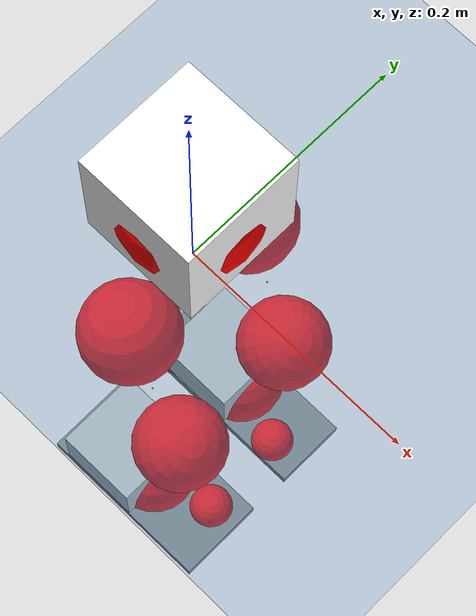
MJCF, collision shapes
<mujoco model="pi_12dof_release_v1">
  <compiler angle="radian" assetdir="assets" balanceinertia="true" inertiafromgeom="false"/>

  <option timestep="0.005" density="1.2" viscosity="2e-05"/>

  <size nkey="1"/>

  <visual>
    <quality shadowsize="8192"/>
    <map shadowclip="0.5"/>
  </visual>

  <default>
    <default class="/">
      <joint armature="0.01" damping="0.01" frictionloss="0.01"/>
      <geom contype="0" conaffinity="0" group="1" solref="-1000 -80"/>
      <site size="0.01 0.005 0.005" group="5"/>
      <general forcelimited="true" biastype="affine" gainprm="20" biasprm="0 -20 -0.5"/>
      <default class="foot">
        <geom size="0.0845 0.036 0.005" type="box" condim="6" group="4" priority="1" friction="0.9 0.2 0.2" solimp="0.015 1 0.005"/>
      </default>
      <default class="reward_collision_sphere">
        <geom group="5" rgba="1 0 0 1"/>
      </default>
    </default>
  </default>

  <asset>
    <texture type="skybox" colorspace="auto" name="//unnamed_texture_0" builtin="gradient" rgb1="0.95 0.95 0.95" rgb2="0.95 0.95 0.95" width="100" height="600"/>
    <texture type="2d" colorspace="auto" name="texplane" builtin="checker" rgb1="0.345 0.575 0.748" rgb2="0.345 0.575 0.748" markrgb="1 1 1" width="512" height="512"/>
    <material name="MatPlane" class="/" texture="texplane" texuniform="true" texrepeat="2 2" specular="0.9"/>
    <mesh name="baselink_1" class="/" file="baselink_1.STL"/>
    <mesh name="r_hip_pitch_link" class="/" file="r_hip_pitch_link.STL"/>
    <mesh name="r_hip_roll_link" class="/" file="r_hip_roll_link.STL"/>
    <mesh name="r_thigh_link" class="/" file="r_thigh_link.STL"/>
    <mesh name="r_calf_link" class="/" file="r_calf_link.STL"/>
    <mesh name="r_ankle_pitch_link" class="/" file="r_ankle_pitch_link.STL"/>
    <mesh name="r_ankle_roll_link" class="/" file="r_ankle_roll_link.STL"/>
    <mesh name="l_hip_pitch_link" class="/" file="l_hip_pitch_link.STL"/>
    <mesh name="l_hip_roll_link" class="/" file="l_hip_roll_link.STL"/>
    <mesh name="l_thigh_link" class="/" file="l_thigh_link.STL"/>
    <mesh name="l_calf_link" class="/" file="l_calf_link.STL"/>
    <mesh name="l_ankle_pitch_link" class="/" file="l_ankle_pitch_link.STL"/>
    <mesh name="l_ankle_roll_link" class="/" file="l_ankle_roll_link.STL"/>
  </asset>

  <worldbody>
    <geom name="floor" class="/" size="100 100 0.125" type="plane" group="0" material="MatPlane"/>
    <light name="toplight_shadow" class="/" pos="0 0 5" dir="0.0990148 0.0990148 -0.990148" type="directional" ambient="0.04 0.04 0.04" diffuse="0.55 0.55 0.55" specular="0.12 0.12 0.12"/>
    <light name="toplight_fill" class="/" pos="0 0 5" dir="0.0990148 0.0990148 -0.990148" type="directional" castshadow="false" ambient="0.04 0.04 0.04" diffuse="0.3 0.3 0.3" specular="0.08 0.08 0.08"/>
    <body name="trunk" pos="-0.00172008 0.000789806 -0.00267339" quat="0.999999 0.000505226 -0.000353288 0.000908832">
      <inertial pos="-0.0005529 0.0020074 0.0527534" quat="0.695689 0.00515163 0.00942273 0.718263" mass="2.1755" diaginertia="0.00494145 0.00292615 0.0167757"/>
      <joint name="//unnamed_joint_0" type="free"/>
      <geom name="//unnamed_geom_1" class="/" type="mesh" density="0" rgba="1 1 1 1" mesh="baselink_1"/>
      <geom name="//unnamed_geom_2" class="/" size="0.0498601 0.0498601 0.0498601" pos="0 0 0.105744" type="box" rgba="1 1 1 1"/>
      <geom name="//unnamed_geom_3" class="reward_collision_sphere" size="0.0548461" pos="0 0 0.092526"/>
      <site name="imu" class="/" pos="0.0126594 0.00956345 -0.0134274" size="0.00997201"/>
      <camera name="track" class="/" pos="0 -1.59708 0" quat="0.707107 0.707107 0 0" mode="trackcom"/>
      <camera name="ego_camera" class="/" pos="0.0653446 0 0.237924" quat="-0.5 -0.5 0.5 0.5"/>
      <body name="r_hip_pitch_link" pos="-0.000948897 -0.0183552 -0.0437187" quat="0.992136 0.000620557 -0.125164 -0.000154187">
        <inertial pos="-0.00184532 -0.0448598 -0.0013289" quat="-0.0215327 0.700548 -0.0279863 0.712731" mass="0.364949" diaginertia="5.39569e-05 3.16453e-05 0.000343953"/>
        <joint name="r_hip_pitch_joint" class="/" pos="0 0 0" axis="0.00850396 -0.999961 0.00218764" stiffness="0.00364082" range="-1.77218 1.24478" armature="0.0086841" damping="0.023423" frictionloss="0.0111358"/>
        <geom name="//unnamed_geom_4" class="/" type="mesh" density="0" rgba="0.75294 0.75294 0.75294 1" mesh="r_hip_pitch_link"/>
        <geom name="//unnamed_geom_5" class="/" size="0.000498601 0.000498601 0.000498601" type="box" rgba="0.75294 0.75294 0.75294 1"/>
        <body name="r_hip_roll_link" pos="-0.000741036 -0.0448932 -0.00070182" quat="1 0.000600705 0.000232035 7.63306e-05">
          <inertial pos="-0.00126761 0.000494261 -0.0785699" quat="0.710662 -0.0844382 -0.0897114 0.692663" mass="0.375586" diaginertia="0.00016873 8.65984e-05 0.00052288"/>
          <joint name="r_hip_roll_joint" class="/" pos="0 0 0" axis="-0.999968 -0.0068335 0.00405049" range="-0.11437 0.492877" armature="0.011391" damping="0" frictionloss="0.00868955"/>
          <geom name="//unnamed_geom_6" class="/" type="mesh" density="0" rgba="0.75294 0.75294 0.75294 1" mesh="r_hip_roll_link"/>
          <geom name="//unnamed_geom_7" class="/" size="0.000498601 0.000498601 0.000498601" type="box" rgba="0.75294 0.75294 0.75294 1"/>
          <geom name="//unnamed_geom_8" class="reward_collision_sphere" size="0.039888"/>
          <body name="r_thigh_link" pos="-0.00245037 -0.000911951 -0.0895261" quat="1 0.000116477 1.07606e-05 7.24832e-05">
            <inertial pos="-0.00168071 -0.00170138 -0.0608392" quat="0.736738 0.676176 0.00192328 -0.000577469" mass="0.110016" diaginertia="6.34655e-05 2.96588e-05 0.000232329"/>
            <joint name="r_thigh_joint" class="/" pos="0 0 0" axis="0.0103616 0.00637922 -0.999926" range="-0.254845 0.642944" armature="0.0107136" damping="0" frictionloss="0.0109573"/>
            <geom name="//unnamed_geom_9" class="/" type="mesh" density="0" rgba="0.75294 0.75294 0.75294 1" mesh="r_thigh_link"/>
            <geom name="//unnamed_geom_10" class="/" size="0.000498601 0.000498601 0.000498601" type="box" rgba="0.75294 0.75294 0.75294 1"/>
            <body name="r_calf_link" pos="0.00298258 0.00113685 -0.0936236" quat="0.947627 -2.586e-06 0.319378 -6.24431e-05">
              <inertial pos="-0.00310095 -0.00276601 -0.0925059" quat="0.999984 -0.00128975 -0.000810382 0.00546412" mass="0.795367" diaginertia="0.00169266 0.00116391 0.000709313"/>
              <joint name="r_calf_joint" class="/" pos="0 0 0" axis="-0.0108369 -0.999939 0.00210431" stiffness="0.00192075" range="-1.6562 0.647422" armature="0.00931748" damping="0.0115089" frictionloss="0.0104533"/>
              <geom name="//unnamed_geom_11" class="/" type="mesh" density="0" rgba="0.75294 0.75294 0.75294 1" mesh="r_calf_link"/>
              <geom name="//unnamed_geom_12" class="/" size="0.000498601 0.000498601 0.000498601" type="box" rgba="0.75294 0.75294 0.75294 1"/>
              <geom name="//unnamed_geom_13" class="reward_collision_sphere" size="0.039888"/>
              <body name="r_ankle_pitch_link" pos="0.00243763 -0.000448857 -0.185642" quat="0.979943 -0.000124752 -0.199275 0.00130164">
                <inertial pos="0.0049238 0.00292087 0.000816837" quat="0.000695646 0.714158 -0.00551823 0.699963" mass="0.178342" diaginertia="0.000148108 7.13081e-05 0.000478442"/>
                <joint name="r_ankle_pitch_joint" class="/" pos="0 0 0" axis="-0.0100678 -0.999926 -0.00681369" stiffness="0.0089857" range="-1.29085 0.471848" armature="0.00978538" damping="0.0147927" frictionloss="0.010131"/>
                <geom name="//unnamed_geom_14" class="/" type="mesh" density="0" rgba="0.75294 0.75294 0.75294 1" mesh="r_ankle_pitch_link"/>
                <geom name="//unnamed_geom_15" class="/" size="0.0388908 0.039888 0.02493" type="box" rgba="0.75294 0.75294 0.75294 1"/>
                <body name="r_ankle_roll_link" pos="0.0690814 0.00513731 0.00145948" quat="1 7.96726e-05 0.00020665 0.00013921">
                  <inertial pos="-0.0197524 -0.00117871 -0.0213277" quat="0.549388 0.436216 0.438024 0.56216" mass="0.52017" diaginertia="0.000603941 0.000336533 0.00117669"/>
                  <joint name="r_ankle_roll_joint" class="/" pos="0 0 0" axis="-1 -0.000745103 0.000439616" stiffness="0.00442822" range="-0.110014 0.145378" armature="0.0103117" damping="0.0104276" frictionloss="0.00870509"/>
                  <geom name="//unnamed_geom_16" class="/" type="mesh" density="0" rgba="0.75294 0.75294 0.75294 1" mesh="r_ankle_roll_link"/>
                  <geom name="//unnamed_geom_17" class="/" type="mesh" rgba="0.75294 0.75294 0.75294 1" mesh="r_ankle_roll_link"/>
                  <geom name="right_foot" class="foot" size="0.0864429 0.0416318 0.00456455" pos="-0.0444343 0 -0.0581592"/>
                  <geom name="//unnamed_geom_19" class="reward_collision_sphere" size="0.039888" pos="-0.0435631 0 -0.026436"/>
                  <geom name="//unnamed_geom_20" class="reward_collision_sphere" size="0.019944" pos="0.0130689 0.0159708 -0.052872"/>
                  <geom name="//unnamed_geom_21" class="reward_collision_sphere" size="0.019944" pos="-0.104551 0.0159708 -0.052872"/>
                  <site name="right_foot" class="foot" pos="-0.0444343 0 -0.0581592" size="0.00997201"/>
                </body>
              </body>
            </body>
          </body>
        </body>
      </body>
      <body name="l_hip_pitch_link" pos="-0.00199482 0.0158201 -0.042983" quat="0.992173 -0.000200356 -0.124872 -0.000565071">
        <inertial pos="0.00122918 0.0428721 -8.28869e-05" quat="-0.0415941 0.706215 0.0292766 0.706168" mass="0.383276" diaginertia="6.43971e-05 3.31042e-05 0.000402697"/>
        <joint name="l_hip_pitch_joint" class="/" pos="0 0 0" axis="-0.00338643 0.999943 0.0101413" stiffness="0.00295396" range="-1.21673 1.745" armature="0.0107167" damping="0.0121071" frictionloss="0.00950931"/>
        <geom name="//unnamed_geom_22" class="/" type="mesh" density="0" rgba="0.75294 0.75294 0.75294 1" mesh="l_hip_pitch_link"/>
        <geom name="//unnamed_geom_23" class="/" size="0.000498601 0.000498601 0.000498601" type="box" rgba="0.75294 0.75294 0.75294 1"/>
        <body name="l_hip_roll_link" pos="0.000458663 0.0425212 0.000576652" quat="1 -2.60358e-05 -0.000128549 -7.13807e-06">
          <inertial pos="-0.0016423 0.00177835 -0.0785482" quat="0.69929 -0.0752425 -0.0779941 0.706575" mass="0.391833" diaginertia="0.000174546 9.21184e-05 0.000538115"/>
          <joint name="l_hip_roll_joint" class="/" pos="0 0 0" axis="-0.999999 0.00116177 -2.01069e-05" stiffness="0.0103199" range="-0.486448 0.13949" armature="0.00869155" damping="0.014449" frictionloss="0.00998201"/>
          <geom name="//unnamed_geom_24" class="/" type="mesh" density="0" rgba="0.75294 0.75294 0.75294 1" mesh="l_hip_roll_link"/>
          <geom name="//unnamed_geom_25" class="/" size="0.000498601 0.000498601 0.000498601" type="box" rgba="0.75294 0.75294 0.75294 1"/>
          <geom name="//unnamed_geom_26" class="reward_collision_sphere" size="0.039888"/>
          <body name="l_thigh_link" pos="-0.00212634 0.00241268 -0.0931127" quat="1 9.95002e-05 0.000311797 7.23651e-05">
            <inertial pos="0.0025871 -0.00355506 -0.0607685" quat="0.672689 0.739917 0.00335626 0.00103444" mass="0.109666" diaginertia="6.24522e-05 3.17856e-05 0.000225886"/>
            <joint name="l_thigh_joint" class="/" pos="0 0 0" axis="0.000280527 0.00245823 -0.999997" stiffness="0.00895538" range="-0.609032 0.247252" armature="0.00988343" damping="0.00878187" frictionloss="0.00972992"/>
            <geom name="//unnamed_geom_27" class="/" type="mesh" density="0" rgba="0.75294 0.75294 0.75294 1" mesh="l_thigh_link"/>
            <geom name="//unnamed_geom_28" class="/" size="0.000498601 0.000498601 0.000498601" type="box" rgba="0.75294 0.75294 0.75294 1"/>
            <body name="l_calf_link" pos="0.00132338 -0.00223844 -0.0931218" quat="0.94786 0.000355142 0.318686 -0.000838214">
              <inertial pos="6.13601e-05 0.00285296 -0.09408" quat="0.999984 0.00310825 -0.000206315 0.00461676" mass="0.849317" diaginertia="0.00177189 0.00113442 0.000717438"/>
              <joint name="l_calf_joint" class="/" pos="0 0 0" axis="-0.00759564 0.99997 -0.00169013" range="-0.682077 1.6482" armature="0.00978485" damping="0.00840451" frictionloss="0.011277"/>
              <geom name="//unnamed_geom_29" class="/" type="mesh" density="0" rgba="0.75294 0.75294 0.75294 1" mesh="l_calf_link"/>
              <geom name="//unnamed_geom_30" class="/" size="0.000498601 0.000498601 0.000498601" type="box" rgba="0.75294 0.75294 0.75294 1"/>
              <geom name="//unnamed_geom_31" class="reward_collision_sphere" size="0.039888"/>
              <body name="l_ankle_pitch_link" pos="0.00278651 0.000988899 -0.186157" quat="0.980073 -0.000243846 -0.198638 0.000159166">
                <inertial pos="0.00187934 0.00104502 -0.000553108" quat="-0.00338344 0.707501 0.00411412 0.706692" mass="0.170804" diaginertia="0.000158154 7.12873e-05 0.000484079"/>
                <joint name="l_ankle_pitch_joint" class="/" pos="0 0 0" axis="0.00128776 0.999994 -0.00310075" range="-0.500833 1.28246" armature="0.00948776" damping="0.00269057" frictionloss="0.0108885"/>
                <geom name="//unnamed_geom_32" class="/" type="mesh" density="0" rgba="0.75294 0.75294 0.75294 1" mesh="l_ankle_pitch_link"/>
                <geom name="//unnamed_geom_33" class="/" size="0.0388908 0.039888 0.02493" type="box" rgba="0.75294 0.75294 0.75294 1"/>
                <body name="l_ankle_roll_link" pos="0.0647574 0.000331152 -6.09465e-05" quat="1 0.000355227 0.000628898 -0.000327903">
                  <inertial pos="-0.0193913 -0.00100265 -0.0190059" quat="0.563425 0.42773 0.433474 0.558301" mass="0.492521" diaginertia="0.000541924 0.000327296 0.00110634"/>
                  <joint name="l_ankle_roll_joint" class="/" pos="0 0 0" axis="-0.999948 0.00778697 -0.00651787" range="-0.107444 0.155118" armature="0.0106873" damping="0.016445" frictionloss="0.00987886"/>
                  <geom name="//unnamed_geom_34" class="/" type="mesh" density="0" rgba="0.75294 0.75294 0.75294 1" mesh="l_ankle_roll_link"/>
                  <geom name="//unnamed_geom_35" class="/" type="mesh" rgba="0.75294 0.75294 0.75294 1" mesh="l_ankle_roll_link"/>
                  <geom name="left_foot" class="foot" size="0.0915613 0.0349291 0.00465865" pos="-0.0444343 0 -0.0581592"/>
                  <geom name="//unnamed_geom_37" class="reward_collision_sphere" size="0.039888" pos="-0.0435631 0 -0.026436"/>
                  <geom name="//unnamed_geom_38" class="reward_collision_sphere" size="0.019944" pos="0.0130689 -0.0159708 -0.052872"/>
                  <geom name="//unnamed_geom_39" class="reward_collision_sphere" size="0.019944" pos="-0.104551 -0.0159708 -0.052872"/>
                  <site name="left_foot" class="foot" pos="-0.0444343 0 -0.0581592" size="0.00997201"/>
                </body>
              </body>
            </body>
          </body>
        </body>
      </body>
    </body>
  </worldbody>

  <contact>
    <pair class="/" geom1="floor" geom2="right_foot" name="//unnamed_contact_1"/>
    <pair class="/" geom1="floor" geom2="left_foot" name="//unnamed_contact_0"/>
  </contact>

  <actuator>
    <general name="r_hip_pitch_joint" class="/" joint="r_hip_pitch_joint" forcerange="-21.1804 21.1804" gainprm="20.35" biasprm="0 -20.35 -0.476694"/>
    <general name="r_hip_roll_joint" class="/" joint="r_hip_roll_joint" forcerange="-20.8479 20.8479" gainprm="20.35" biasprm="0 -20.35 -0.476694"/>
    <general name="r_thigh_joint" class="/" joint="r_thigh_joint" forcerange="-23.0837 23.0837" gainprm="20.35" biasprm="0 -20.35 -0.476694"/>
    <general name="r_calf_joint" class="/" joint="r_calf_joint" forcerange="-18.8796 18.8796" gainprm="20.35" biasprm="0 -20.35 -0.476694"/>
    <general name="r_ankle_pitch_joint" class="/" joint="r_ankle_pitch_joint" forcerange="-23.0181 23.0181" gainprm="20.35" biasprm="0 -20.35 -0.476694"/>
    <general name="r_ankle_roll_joint" class="/" joint="r_ankle_roll_joint" forcerange="-22.9257 22.9257" gainprm="20.35" biasprm="0 -20.35 -0.476694"/>
    <general name="l_hip_pitch_joint" class="/" joint="l_hip_pitch_joint" forcerange="-22.2014 22.2014" gainprm="20.35" biasprm="0 -20.35 -0.476694"/>
    <general name="l_hip_roll_joint" class="/" joint="l_hip_roll_joint" forcerange="-21.3986 21.3986" gainprm="20.35" biasprm="0 -20.35 -0.476694"/>
    <general name="l_thigh_joint" class="/" joint="l_thigh_joint" forcerange="-21.1124 21.1124" gainprm="20.35" biasprm="0 -20.35 -0.476694"/>
    <general name="l_calf_joint" class="/" joint="l_calf_joint" forcerange="-20.8548 20.8548" gainprm="20.35" biasprm="0 -20.35 -0.476694"/>
    <general name="l_ankle_pitch_joint" class="/" joint="l_ankle_pitch_joint" forcerange="-22.7472 22.7472" gainprm="20.35" biasprm="0 -20.35 -0.476694"/>
    <general name="l_ankle_roll_joint" class="/" joint="l_ankle_roll_joint" forcerange="-19.1886 19.1886" gainprm="20.35" biasprm="0 -20.35 -0.476694"/>
  </actuator>

  <sensor>
    <gyro site="imu" name="imu_angular_velocity"/>
    <velocimeter site="imu" name="imu_linear_velocity"/>
    <framelinvel objtype="site" objname="left_foot" name="left_foot_global_linear_velocity"/>
    <framelinvel objtype="site" objname="right_foot" name="right_foot_global_linear_velocity"/>
  </sensor>

  <keyframe>
    <key name="home" qpos="0 0 0.291 1 0 0 0 0.4 0 0 -0.8 0.4 0 -0.4 0 0 0.8 -0.4 0"/>
  </keyframe>
</mujoco>
